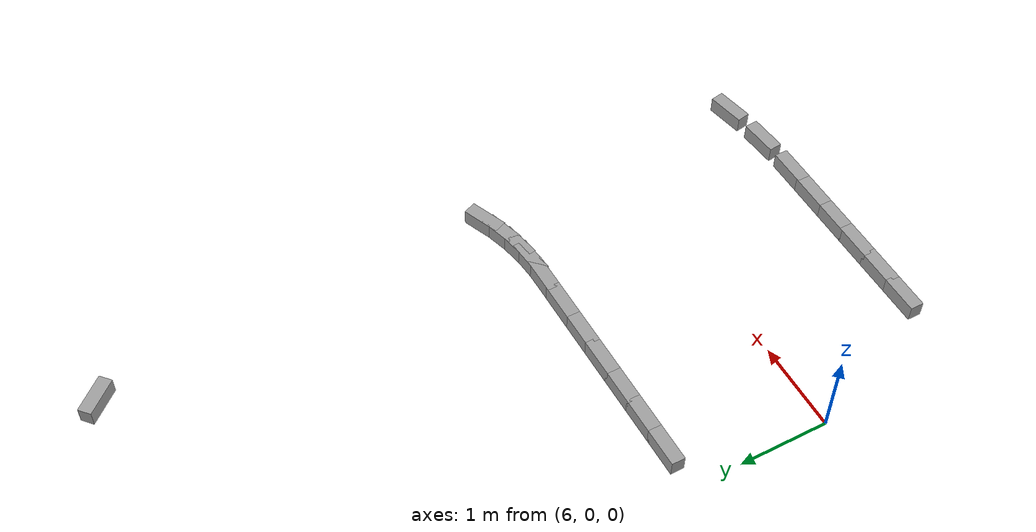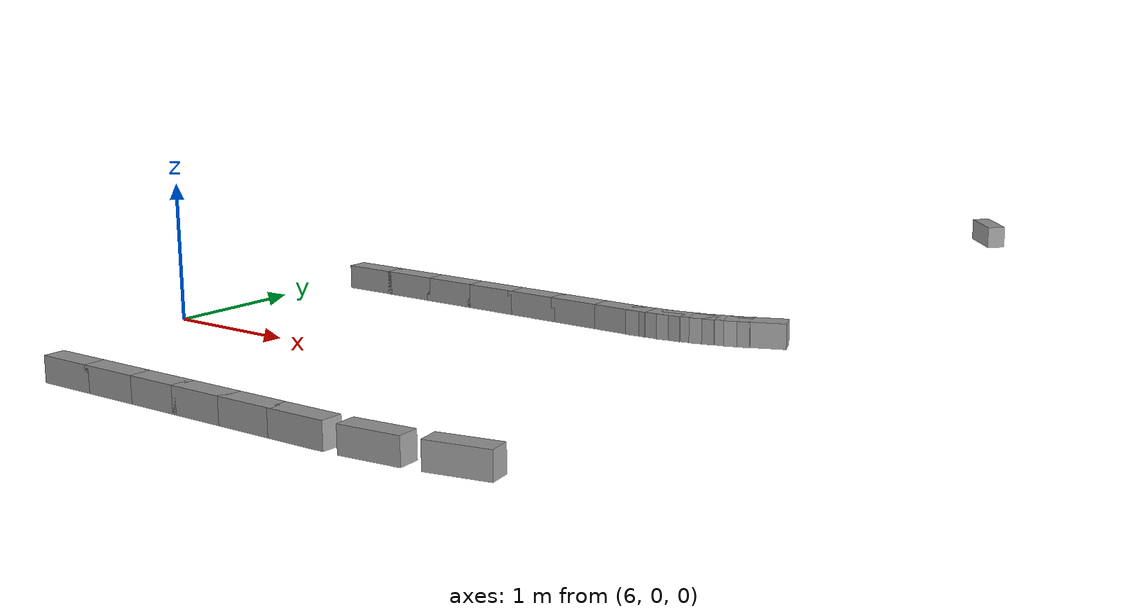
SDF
<sdf version="1.10">
 <world name="s_curve_avoidance">
  <model name="left_curb_seg_0008">
   <static>true</static>
   <pose>6.450000 1.575000 0.090000 0 0 0.000000</pose>
   <link name="curb">
    <collision name="collision">
     <geometry><box><size>0.432000 0.150000 0.180000</size></box></geometry>
    </collision>
    <visual name="visual">
     <geometry><box><size>0.432000 0.150000 0.180000</size></box></geometry>
     <material><ambient>0.58 0.58 0.58 1</ambient><diffuse>0.62 0.62 0.62 1</diffuse></material>
    </visual>
   </link>
  </model>
  <model name="left_curb_seg_0009">
   <static>true</static>
   <pose>6.850000 1.575000 0.090000 0 0 0.000000</pose>
   <link name="curb">
    <collision name="collision">
     <geometry><box><size>0.432000 0.150000 0.180000</size></box></geometry>
    </collision>
    <visual name="visual">
     <geometry><box><size>0.432000 0.150000 0.180000</size></box></geometry>
     <material><ambient>0.58 0.58 0.58 1</ambient><diffuse>0.62 0.62 0.62 1</diffuse></material>
    </visual>
   </link>
  </model>
  <model name="left_curb_seg_0010">
   <static>true</static>
   <pose>7.250000 1.575000 0.090000 0 0 0.000000</pose>
   <link name="curb">
    <collision name="collision">
     <geometry><box><size>0.432000 0.150000 0.180000</size></box></geometry>
    </collision>
    <visual name="visual">
     <geometry><box><size>0.432000 0.150000 0.180000</size></box></geometry>
     <material><ambient>0.58 0.58 0.58 1</ambient><diffuse>0.62 0.62 0.62 1</diffuse></material>
    </visual>
   </link>
  </model>
  <model name="left_curb_seg_0011">
   <static>true</static>
   <pose>7.650000 1.575000 0.090000 0 0 0.000000</pose>
   <link name="curb">
    <collision name="collision">
     <geometry><box><size>0.432000 0.150000 0.180000</size></box></geometry>
    </collision>
    <visual name="visual">
     <geometry><box><size>0.432000 0.150000 0.180000</size></box></geometry>
     <material><ambient>0.58 0.58 0.58 1</ambient><diffuse>0.62 0.62 0.62 1</diffuse></material>
    </visual>
   </link>
  </model>
  <model name="left_curb_seg_0012">
   <static>true</static>
   <pose>8.050000 1.575000 0.090000 0 0 0.000000</pose>
   <link name="curb">
    <collision name="collision">
     <geometry><box><size>0.432000 0.150000 0.180000</size></box></geometry>
    </collision>
    <visual name="visual">
     <geometry><box><size>0.432000 0.150000 0.180000</size></box></geometry>
     <material><ambient>0.58 0.58 0.58 1</ambient><diffuse>0.62 0.62 0.62 1</diffuse></material>
    </visual>
   </link>
  </model>
  <model name="left_curb_seg_0013">
   <static>true</static>
   <pose>8.450000 1.575000 0.090000 0 0 0.000000</pose>
   <link name="curb">
    <collision name="collision">
     <geometry><box><size>0.432000 0.150000 0.180000</size></box></geometry>
    </collision>
    <visual name="visual">
     <geometry><box><size>0.432000 0.150000 0.180000</size></box></geometry>
     <material><ambient>0.58 0.58 0.58 1</ambient><diffuse>0.62 0.62 0.62 1</diffuse></material>
    </visual>
   </link>
  </model>
  <model name="left_curb_seg_0014">
   <static>true</static>
   <pose>8.843437 1.575126 0.090000 0 0 0.004167</pose>
   <link name="curb">
    <collision name="collision">
     <geometry><box><size>0.432000 0.150000 0.180000</size></box></geometry>
    </collision>
    <visual name="visual">
     <geometry><box><size>0.432000 0.150000 0.180000</size></box></geometry>
     <material><ambient>0.58 0.58 0.58 1</ambient><diffuse>0.62 0.62 0.62 1</diffuse></material>
    </visual>
   </link>
  </model>
  <model name="left_curb_seg_0015">
   <static>true</static>
   <pose>9.111910 1.585217 0.090000 0 0 0.087500</pose>
   <link name="curb">
    <collision name="collision">
     <geometry><box><size>0.432000 0.150000 0.180000</size></box></geometry>
    </collision>
    <visual name="visual">
     <geometry><box><size>0.432000 0.150000 0.180000</size></box></geometry>
     <material><ambient>0.58 0.58 0.58 1</ambient><diffuse>0.62 0.62 0.62 1</diffuse></material>
    </visual>
   </link>
  </model>
  <model name="left_curb_seg_0016">
   <static>true</static>
   <pose>9.352021 1.618442 0.090000 0 0 0.187500</pose>
   <link name="curb">
    <collision name="collision">
     <geometry><box><size>0.432000 0.150000 0.180000</size></box></geometry>
    </collision>
    <visual name="visual">
     <geometry><box><size>0.432000 0.150000 0.180000</size></box></geometry>
     <material><ambient>0.58 0.58 0.58 1</ambient><diffuse>0.62 0.62 0.62 1</diffuse></material>
    </visual>
   </link>
  </model>
  <model name="left_curb_seg_0017">
   <static>true</static>
   <pose>9.587615 1.675472 0.090000 0 0 0.287500</pose>
   <link name="curb">
    <collision name="collision">
     <geometry><box><size>0.432000 0.150000 0.180000</size></box></geometry>
    </collision>
    <visual name="visual">
     <geometry><box><size>0.432000 0.150000 0.180000</size></box></geometry>
     <material><ambient>0.58 0.58 0.58 1</ambient><diffuse>0.62 0.62 0.62 1</diffuse></material>
    </visual>
   </link>
  </model>
  <model name="left_curb_seg_0018">
   <static>true</static>
   <pose>9.816339 1.755737 0.090000 0 0 0.387500</pose>
   <link name="curb">
    <collision name="collision">
     <geometry><box><size>0.432000 0.150000 0.180000</size></box></geometry>
    </collision>
    <visual name="visual">
     <geometry><box><size>0.432000 0.150000 0.180000</size></box></geometry>
     <material><ambient>0.58 0.58 0.58 1</ambient><diffuse>0.62 0.62 0.62 1</diffuse></material>
    </visual>
   </link>
  </model>
  <model name="left_curb_seg_0040">
   <static>true</static>
   <pose>9.625022 6.206370 0.090000 0 0 2.293672</pose>
   <link name="curb">
    <collision name="collision">
     <geometry><box><size>0.432000 0.150000 0.180000</size></box></geometry>
    </collision>
    <visual name="visual">
     <geometry><box><size>0.432000 0.150000 0.180000</size></box></geometry>
     <material><ambient>0.58 0.58 0.58 1</ambient><diffuse>0.62 0.62 0.62 1</diffuse></material>
    </visual>
   </link>
  </model>
  <model name="right_curb_seg_0009">
   <static>true</static>
   <pose>6.850000 -1.575000 0.090000 0 0 0.000000</pose>
   <link name="curb">
    <collision name="collision">
     <geometry><box><size>0.432000 0.150000 0.180000</size></box></geometry>
    </collision>
    <visual name="visual">
     <geometry><box><size>0.432000 0.150000 0.180000</size></box></geometry>
     <material><ambient>0.58 0.58 0.58 1</ambient><diffuse>0.62 0.62 0.62 1</diffuse></material>
    </visual>
   </link>
  </model>
  <model name="right_curb_seg_0010">
   <static>true</static>
   <pose>7.250000 -1.575000 0.090000 0 0 0.000000</pose>
   <link name="curb">
    <collision name="collision">
     <geometry><box><size>0.432000 0.150000 0.180000</size></box></geometry>
    </collision>
    <visual name="visual">
     <geometry><box><size>0.432000 0.150000 0.180000</size></box></geometry>
     <material><ambient>0.58 0.58 0.58 1</ambient><diffuse>0.62 0.62 0.62 1</diffuse></material>
    </visual>
   </link>
  </model>
  <model name="right_curb_seg_0011">
   <static>true</static>
   <pose>7.650000 -1.575000 0.090000 0 0 0.000000</pose>
   <link name="curb">
    <collision name="collision">
     <geometry><box><size>0.432000 0.150000 0.180000</size></box></geometry>
    </collision>
    <visual name="visual">
     <geometry><box><size>0.432000 0.150000 0.180000</size></box></geometry>
     <material><ambient>0.58 0.58 0.58 1</ambient><diffuse>0.62 0.62 0.62 1</diffuse></material>
    </visual>
   </link>
  </model>
  <model name="right_curb_seg_0012">
   <static>true</static>
   <pose>8.050000 -1.575000 0.090000 0 0 0.000000</pose>
   <link name="curb">
    <collision name="collision">
     <geometry><box><size>0.432000 0.150000 0.180000</size></box></geometry>
    </collision>
    <visual name="visual">
     <geometry><box><size>0.432000 0.150000 0.180000</size></box></geometry>
     <material><ambient>0.58 0.58 0.58 1</ambient><diffuse>0.62 0.62 0.62 1</diffuse></material>
    </visual>
   </link>
  </model>
  <model name="right_curb_seg_0013">
   <static>true</static>
   <pose>8.450000 -1.575000 0.090000 0 0 0.000000</pose>
   <link name="curb">
    <collision name="collision">
     <geometry><box><size>0.432000 0.150000 0.180000</size></box></geometry>
    </collision>
    <visual name="visual">
     <geometry><box><size>0.432000 0.150000 0.180000</size></box></geometry>
     <material><ambient>0.58 0.58 0.58 1</ambient><diffuse>0.62 0.62 0.62 1</diffuse></material>
    </visual>
   </link>
  </model>
  <model name="right_curb_seg_0014">
   <static>true</static>
   <pose>8.856562 -1.574847 0.090000 0 0 0.004167</pose>
   <link name="curb">
    <collision name="collision">
     <geometry><box><size>0.432000 0.150000 0.180000</size></box></geometry>
    </collision>
    <visual name="visual">
     <geometry><box><size>0.432000 0.150000 0.180000</size></box></geometry>
     <material><ambient>0.58 0.58 0.58 1</ambient><diffuse>0.62 0.62 0.62 1</diffuse></material>
    </visual>
   </link>
  </model>
  <model name="right_curb_seg_0015">
   <static>true</static>
   <pose>9.387183 -1.552732 0.090000 0 0 0.087500</pose>
   <link name="curb">
    <collision name="collision">
     <geometry><box><size>0.432000 0.150000 0.180000</size></box></geometry>
    </collision>
    <visual name="visual">
     <geometry><box><size>0.432000 0.150000 0.180000</size></box></geometry>
     <material><ambient>0.58 0.58 0.58 1</ambient><diffuse>0.62 0.62 0.62 1</diffuse></material>
    </visual>
   </link>
  </model>
  <model name="right_curb_seg_0016">
   <static>true</static>
   <pose>9.939191 -1.476349 0.090000 0 0 0.187500</pose>
   <link name="curb">
    <collision name="collision">
     <geometry><box><size>0.432000 0.150000 0.180000</size></box></geometry>
    </collision>
    <visual name="visual">
     <geometry><box><size>0.432000 0.150000 0.180000</size></box></geometry>
     <material><ambient>0.58 0.58 0.58 1</ambient><diffuse>0.62 0.62 0.62 1</diffuse></material>
    </visual>
   </link>
  </model>
 </world>
</sdf>
